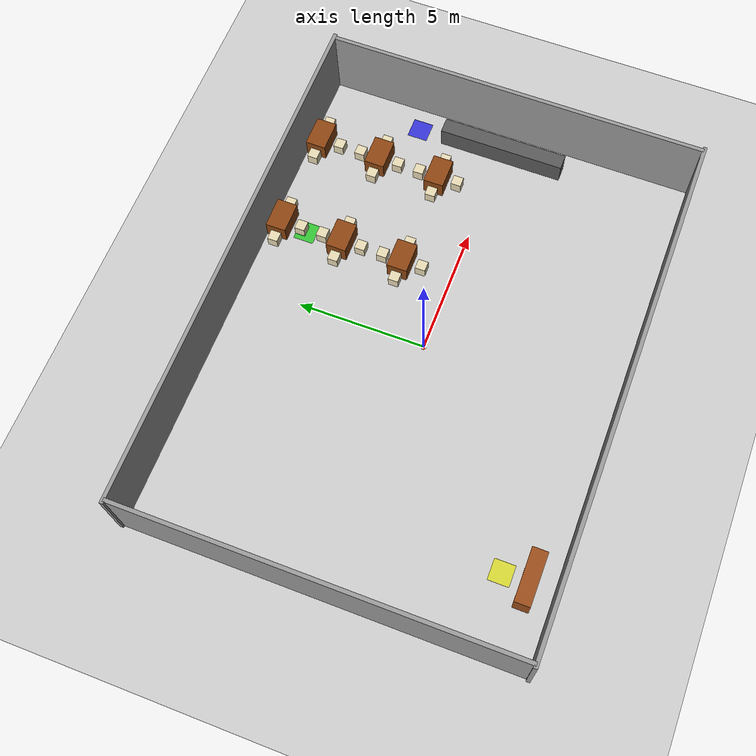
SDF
<?xml version="1.0" ?>
<sdf version="1.6">
  <world name="cafeteria">

    <!-- ── Physics ──────────────────────────────────────────────── -->
    <physics type="ode">
      <real_time_update_rate>1000</real_time_update_rate>
      <max_step_size>0.001</max_step_size>
      <real_time_factor>1</real_time_factor>
    </physics>

    <!-- ── Sky & Atmosphere ─────────────────────────────────────── -->
    <scene>
      <sky>
        <clouds><speed>12</speed></clouds>
      </sky>
      <ambient>0.6 0.6 0.6 1</ambient>
      <background>0.4 0.4 0.4 1</background>
      <shadows>true</shadows>
    </scene>

    <!-- ── Sun (directional light) ──────────────────────────────── -->
    <light name="sun" type="directional">
      <cast_shadows>true</cast_shadows>
      <pose>0 0 10 0 -0 0</pose>
      <diffuse>0.8 0.8 0.8 1</diffuse>
      <specular>0.2 0.2 0.2 1</specular>
      <attenuation>
        <range>1000</range>
        <constant>0.9</constant>
        <linear>0.01</linear>
        <quadratic>0.001</quadratic>
      </attenuation>
      <direction>-0.5 0.1 -0.9</direction>
    </light>

    <!-- ── Table overhead point lights ─────────────────────────── -->
    <light name="table_light_1" type="point">
      <pose>3 3 2.5 0 0 0</pose>
      <diffuse>1.0 0.95 0.8 1</diffuse>
      <specular>0.1 0.1 0.1 1</specular>
      <attenuation><range>8</range><constant>0.5</constant><linear>0.1</linear><quadratic>0.01</quadratic></attenuation>
      <cast_shadows>false</cast_shadows>
    </light>
    <light name="table_light_2" type="point">
      <pose>3 6 2.5 0 0 0</pose>
      <diffuse>1.0 0.95 0.8 1</diffuse>
      <specular>0.1 0.1 0.1 1</specular>
      <attenuation><range>8</range><constant>0.5</constant><linear>0.1</linear><quadratic>0.01</quadratic></attenuation>
      <cast_shadows>false</cast_shadows>
    </light>
    <light name="table_light_3" type="point">
      <pose>7 4.5 2.5 0 0 0</pose>
      <diffuse>1.0 0.95 0.8 1</diffuse>
      <specular>0.1 0.1 0.1 1</specular>
      <attenuation><range>8</range><constant>0.5</constant><linear>0.1</linear><quadratic>0.01</quadratic></attenuation>
      <cast_shadows>false</cast_shadows>
    </light>

    <!-- ── Ground plane ─────────────────────────────────────────── -->
    <model name="ground_plane">
      <static>true</static>
      <link name="link">
        <collision name="collision">
          <geometry><plane><normal>0 0 1</normal><size>50 50</size></plane></geometry>
          <surface><friction><ode><mu>100</mu><mu2>50</mu2></ode></friction></surface>
        </collision>
        <visual name="visual">
          <cast_shadows>false</cast_shadows>
          <geometry><plane><normal>0 0 1</normal><size>50 50</size></plane></geometry>
          <material>
            <script>
              <uri>file://media/materials/scripts/gazebo.material</uri>
              <name>Gazebo/Grey</name>
            </script>
          </material>
        </visual>
      </link>
    </model>

    <!-- ── Cafeteria Walls (20 x 15 m room) ─────────────────────── -->
    <!-- North wall -->
    <model name="wall_north">
      <static>true</static>
      <pose>0 7.5 1.5 0 0 0</pose>
      <link name="link">
        <collision name="col"><geometry><box><size>20.3 0.15 3.0</size></box></geometry></collision>
        <visual name="vis">
          <geometry><box><size>20.3 0.15 3.0</size></box></geometry>
          <material><script><uri>file://media/materials/scripts/gazebo.material</uri><name>Gazebo/Grey</name></script></material>
        </visual>
      </link>
    </model>

    <!-- South wall -->
    <model name="wall_south">
      <static>true</static>
      <pose>0 -7.5 1.5 0 0 0</pose>
      <link name="link">
        <collision name="col"><geometry><box><size>20.3 0.15 3.0</size></box></geometry></collision>
        <visual name="vis">
          <geometry><box><size>20.3 0.15 3.0</size></box></geometry>
          <material><script><uri>file://media/materials/scripts/gazebo.material</uri><name>Gazebo/Grey</name></script></material>
        </visual>
      </link>
    </model>

    <!-- East wall -->
    <model name="wall_east">
      <static>true</static>
      <pose>10 0 1.5 0 0 0</pose>
      <link name="link">
        <collision name="col"><geometry><box><size>0.15 15.0 3.0</size></box></geometry></collision>
        <visual name="vis">
          <geometry><box><size>0.15 15.0 3.0</size></box></geometry>
          <material><script><uri>file://media/materials/scripts/gazebo.material</uri><name>Gazebo/Grey</name></script></material>
        </visual>
      </link>
    </model>

    <!-- West wall -->
    <model name="wall_west">
      <static>true</static>
      <pose>-10 0 1.5 0 0 0</pose>
      <link name="link">
        <collision name="col"><geometry><box><size>0.15 15.0 3.0</size></box></geometry></collision>
        <visual name="vis">
          <geometry><box><size>0.15 15.0 3.0</size></box></geometry>
          <material><script><uri>file://media/materials/scripts/gazebo.material</uri><name>Gazebo/Grey</name></script></material>
        </visual>
      </link>
    </model>

    <!-- Table 1 -->
    <model name="table1">
      <static>true</static>
      <pose>3.0 2.0 0.375 0 0 0</pose>
      <link name="link">
        <collision name="col"><geometry><box><size>1.2 0.8 0.75</size></box></geometry></collision>
        <visual name="vis">
          <geometry><box><size>1.2 0.8 0.75</size></box></geometry>
          <material><ambient>0.55 0.27 0.07 1</ambient><diffuse>0.55 0.27 0.07 1</diffuse></material>
        </visual>
      </link>
    </model>
    <!-- Chairs for Table 1 -->
    <model name="chair1_1"><static>true</static><pose>3.0 1.2 0.225 0 0 0</pose><link name="link"><collision name="col"><geometry><box><size>0.4 0.4 0.45</size></box></geometry></collision><visual name="vis"><geometry><box><size>0.4 0.4 0.45</size></box></geometry><material><ambient>0.9 0.85 0.7 1</ambient><diffuse>0.9 0.85 0.7 1</diffuse></material></visual></link></model>
    <model name="chair1_2"><static>true</static><pose>3.0 2.8 0.225 0 0 0</pose><link name="link"><collision name="col"><geometry><box><size>0.4 0.4 0.45</size></box></geometry></collision><visual name="vis"><geometry><box><size>0.4 0.4 0.45</size></box></geometry><material><ambient>0.9 0.85 0.7 1</ambient><diffuse>0.9 0.85 0.7 1</diffuse></material></visual></link></model>
    <model name="chair1_3"><static>true</static><pose>2.2 2.0 0.225 0 0 0</pose><link name="link"><collision name="col"><geometry><box><size>0.4 0.4 0.45</size></box></geometry></collision><visual name="vis"><geometry><box><size>0.4 0.4 0.45</size></box></geometry><material><ambient>0.9 0.85 0.7 1</ambient><diffuse>0.9 0.85 0.7 1</diffuse></material></visual></link></model>
    <model name="chair1_4"><static>true</static><pose>3.8 2.0 0.225 0 0 0</pose><link name="link"><collision name="col"><geometry><box><size>0.4 0.4 0.45</size></box></geometry></collision><visual name="vis"><geometry><box><size>0.4 0.4 0.45</size></box></geometry><material><ambient>0.9 0.85 0.7 1</ambient><diffuse>0.9 0.85 0.7 1</diffuse></material></visual></link></model>

    <!-- Table 2 -->
    <model name="table2">
      <static>true</static>
      <pose>3.0 4.5 0.375 0 0 0</pose>
      <link name="link">
        <collision name="col"><geometry><box><size>1.2 0.8 0.75</size></box></geometry></collision>
        <visual name="vis">
          <geometry><box><size>1.2 0.8 0.75</size></box></geometry>
          <material><ambient>0.55 0.27 0.07 1</ambient><diffuse>0.55 0.27 0.07 1</diffuse></material>
        </visual>
      </link>
    </model>
    <model name="chair2_1"><static>true</static><pose>3.0 3.7 0.225 0 0 0</pose><link name="link"><collision name="col"><geometry><box><size>0.4 0.4 0.45</size></box></geometry></collision><visual name="vis"><geometry><box><size>0.4 0.4 0.45</size></box></geometry><material><ambient>0.9 0.85 0.7 1</ambient><diffuse>0.9 0.85 0.7 1</diffuse></material></visual></link></model>
    <model name="chair2_2"><static>true</static><pose>3.0 5.3 0.225 0 0 0</pose><link name="link"><collision name="col"><geometry><box><size>0.4 0.4 0.45</size></box></geometry></collision><visual name="vis"><geometry><box><size>0.4 0.4 0.45</size></box></geometry><material><ambient>0.9 0.85 0.7 1</ambient><diffuse>0.9 0.85 0.7 1</diffuse></material></visual></link></model>
    <model name="chair2_3"><static>true</static><pose>2.2 4.5 0.225 0 0 0</pose><link name="link"><collision name="col"><geometry><box><size>0.4 0.4 0.45</size></box></geometry></collision><visual name="vis"><geometry><box><size>0.4 0.4 0.45</size></box></geometry><material><ambient>0.9 0.85 0.7 1</ambient><diffuse>0.9 0.85 0.7 1</diffuse></material></visual></link></model>
    <model name="chair2_4"><static>true</static><pose>3.8 4.5 0.225 0 0 0</pose><link name="link"><collision name="col"><geometry><box><size>0.4 0.4 0.45</size></box></geometry></collision><visual name="vis"><geometry><box><size>0.4 0.4 0.45</size></box></geometry><material><ambient>0.9 0.85 0.7 1</ambient><diffuse>0.9 0.85 0.7 1</diffuse></material></visual></link></model>

    <!-- Table 3 (delivery destination) -->
    <model name="table3">
      <static>true</static>
      <pose>3.0 7.0 0.375 0 0 0</pose>
      <link name="link">
        <collision name="col"><geometry><box><size>1.2 0.8 0.75</size></box></geometry></collision>
        <visual name="vis">
          <geometry><box><size>1.2 0.8 0.75</size></box></geometry>
          <material><ambient>0.55 0.27 0.07 1</ambient><diffuse>0.55 0.27 0.07 1</diffuse></material>
        </visual>
      </link>
    </model>
    <model name="chair3_1"><static>true</static><pose>3.0 6.2 0.225 0 0 0</pose><link name="link"><collision name="col"><geometry><box><size>0.4 0.4 0.45</size></box></geometry></collision><visual name="vis"><geometry><box><size>0.4 0.4 0.45</size></box></geometry><material><ambient>0.9 0.85 0.7 1</ambient><diffuse>0.9 0.85 0.7 1</diffuse></material></visual></link></model>
    <model name="chair3_2"><static>true</static><pose>3.0 7.8 0.225 0 0 0</pose><link name="link"><collision name="col"><geometry><box><size>0.4 0.4 0.45</size></box></geometry></collision><visual name="vis"><geometry><box><size>0.4 0.4 0.45</size></box></geometry><material><ambient>0.9 0.85 0.7 1</ambient><diffuse>0.9 0.85 0.7 1</diffuse></material></visual></link></model>
    <model name="chair3_3"><static>true</static><pose>2.2 7.0 0.225 0 0 0</pose><link name="link"><collision name="col"><geometry><box><size>0.4 0.4 0.45</size></box></geometry></collision><visual name="vis"><geometry><box><size>0.4 0.4 0.45</size></box></geometry><material><ambient>0.9 0.85 0.7 1</ambient><diffuse>0.9 0.85 0.7 1</diffuse></material></visual></link></model>
    <model name="chair3_4"><static>true</static><pose>3.8 7.0 0.225 0 0 0</pose><link name="link"><collision name="col"><geometry><box><size>0.4 0.4 0.45</size></box></geometry></collision><visual name="vis"><geometry><box><size>0.4 0.4 0.45</size></box></geometry><material><ambient>0.9 0.85 0.7 1</ambient><diffuse>0.9 0.85 0.7 1</diffuse></material></visual></link></model>

    <!-- Table 4 -->
    <model name="table4">
      <static>true</static>
      <pose>7.0 2.0 0.375 0 0 0</pose>
      <link name="link">
        <collision name="col"><geometry><box><size>1.2 0.8 0.75</size></box></geometry></collision>
        <visual name="vis">
          <geometry><box><size>1.2 0.8 0.75</size></box></geometry>
          <material><ambient>0.55 0.27 0.07 1</ambient><diffuse>0.55 0.27 0.07 1</diffuse></material>
        </visual>
      </link>
    </model>
    <model name="chair4_1"><static>true</static><pose>7.0 1.2 0.225 0 0 0</pose><link name="link"><collision name="col"><geometry><box><size>0.4 0.4 0.45</size></box></geometry></collision><visual name="vis"><geometry><box><size>0.4 0.4 0.45</size></box></geometry><material><ambient>0.9 0.85 0.7 1</ambient><diffuse>0.9 0.85 0.7 1</diffuse></material></visual></link></model>
    <model name="chair4_2"><static>true</static><pose>7.0 2.8 0.225 0 0 0</pose><link name="link"><collision name="col"><geometry><box><size>0.4 0.4 0.45</size></box></geometry></collision><visual name="vis"><geometry><box><size>0.4 0.4 0.45</size></box></geometry><material><ambient>0.9 0.85 0.7 1</ambient><diffuse>0.9 0.85 0.7 1</diffuse></material></visual></link></model>
    <model name="chair4_3"><static>true</static><pose>6.2 2.0 0.225 0 0 0</pose><link name="link"><collision name="col"><geometry><box><size>0.4 0.4 0.45</size></box></geometry></collision><visual name="vis"><geometry><box><size>0.4 0.4 0.45</size></box></geometry><material><ambient>0.9 0.85 0.7 1</ambient><diffuse>0.9 0.85 0.7 1</diffuse></material></visual></link></model>
    <model name="chair4_4"><static>true</static><pose>7.8 2.0 0.225 0 0 0</pose><link name="link"><collision name="col"><geometry><box><size>0.4 0.4 0.45</size></box></geometry></collision><visual name="vis"><geometry><box><size>0.4 0.4 0.45</size></box></geometry><material><ambient>0.9 0.85 0.7 1</ambient><diffuse>0.9 0.85 0.7 1</diffuse></material></visual></link></model>

    <!-- Table 5 -->
    <model name="table5">
      <static>true</static>
      <pose>7.0 4.5 0.375 0 0 0</pose>
      <link name="link">
        <collision name="col"><geometry><box><size>1.2 0.8 0.75</size></box></geometry></collision>
        <visual name="vis">
          <geometry><box><size>1.2 0.8 0.75</size></box></geometry>
          <material><ambient>0.55 0.27 0.07 1</ambient><diffuse>0.55 0.27 0.07 1</diffuse></material>
        </visual>
      </link>
    </model>
    <model name="chair5_1"><static>true</static><pose>7.0 3.7 0.225 0 0 0</pose><link name="link"><collision name="col"><geometry><box><size>0.4 0.4 0.45</size></box></geometry></collision><visual name="vis"><geometry><box><size>0.4 0.4 0.45</size></box></geometry><material><ambient>0.9 0.85 0.7 1</ambient><diffuse>0.9 0.85 0.7 1</diffuse></material></visual></link></model>
    <model name="chair5_2"><static>true</static><pose>7.0 5.3 0.225 0 0 0</pose><link name="link"><collision name="col"><geometry><box><size>0.4 0.4 0.45</size></box></geometry></collision><visual name="vis"><geometry><box><size>0.4 0.4 0.45</size></box></geometry><material><ambient>0.9 0.85 0.7 1</ambient><diffuse>0.9 0.85 0.7 1</diffuse></material></visual></link></model>
    <model name="chair5_3"><static>true</static><pose>6.2 4.5 0.225 0 0 0</pose><link name="link"><collision name="col"><geometry><box><size>0.4 0.4 0.45</size></box></geometry></collision><visual name="vis"><geometry><box><size>0.4 0.4 0.45</size></box></geometry><material><ambient>0.9 0.85 0.7 1</ambient><diffuse>0.9 0.85 0.7 1</diffuse></material></visual></link></model>
    <model name="chair5_4"><static>true</static><pose>7.8 4.5 0.225 0 0 0</pose><link name="link"><collision name="col"><geometry><box><size>0.4 0.4 0.45</size></box></geometry></collision><visual name="vis"><geometry><box><size>0.4 0.4 0.45</size></box></geometry><material><ambient>0.9 0.85 0.7 1</ambient><diffuse>0.9 0.85 0.7 1</diffuse></material></visual></link></model>

    <!-- Table 6 -->
    <model name="table6">
      <static>true</static>
      <pose>7.0 7.0 0.375 0 0 0</pose>
      <link name="link">
        <collision name="col"><geometry><box><size>1.2 0.8 0.75</size></box></geometry></collision>
        <visual name="vis">
          <geometry><box><size>1.2 0.8 0.75</size></box></geometry>
          <material><ambient>0.55 0.27 0.07 1</ambient><diffuse>0.55 0.27 0.07 1</diffuse></material>
        </visual>
      </link>
    </model>
    <model name="chair6_1"><static>true</static><pose>7.0 6.2 0.225 0 0 0</pose><link name="link"><collision name="col"><geometry><box><size>0.4 0.4 0.45</size></box></geometry></collision><visual name="vis"><geometry><box><size>0.4 0.4 0.45</size></box></geometry><material><ambient>0.9 0.85 0.7 1</ambient><diffuse>0.9 0.85 0.7 1</diffuse></material></visual></link></model>
    <model name="chair6_2"><static>true</static><pose>7.0 7.8 0.225 0 0 0</pose><link name="link"><collision name="col"><geometry><box><size>0.4 0.4 0.45</size></box></geometry></collision><visual name="vis"><geometry><box><size>0.4 0.4 0.45</size></box></geometry><material><ambient>0.9 0.85 0.7 1</ambient><diffuse>0.9 0.85 0.7 1</diffuse></material></visual></link></model>
    <model name="chair6_3"><static>true</static><pose>6.2 7.0 0.225 0 0 0</pose><link name="link"><collision name="col"><geometry><box><size>0.4 0.4 0.45</size></box></geometry></collision><visual name="vis"><geometry><box><size>0.4 0.4 0.45</size></box></geometry><material><ambient>0.9 0.85 0.7 1</ambient><diffuse>0.9 0.85 0.7 1</diffuse></material></visual></link></model>
    <model name="chair6_4"><static>true</static><pose>7.8 7.0 0.225 0 0 0</pose><link name="link"><collision name="col"><geometry><box><size>0.4 0.4 0.45</size></box></geometry></collision><visual name="vis"><geometry><box><size>0.4 0.4 0.45</size></box></geometry><material><ambient>0.9 0.85 0.7 1</ambient><diffuse>0.9 0.85 0.7 1</diffuse></material></visual></link></model>

    <!-- ── Kitchen Counter ─────────────────────────────────────── -->
    <model name="kitchen_counter">
      <static>true</static>
      <pose>9.0 0.0 0.45 0 0 0</pose>
      <link name="link">
        <collision name="col"><geometry><box><size>0.6 5.0 0.9</size></box></geometry></collision>
        <visual name="vis">
          <geometry><box><size>0.6 5.0 0.9</size></box></geometry>
          <material><ambient>0.35 0.35 0.35 1</ambient><diffuse>0.35 0.35 0.35 1</diffuse></material>
        </visual>
      </link>
    </model>

    <!-- ── Front Desk / Reception ──────────────────────────────── -->
    <model name="front_desk">
      <static>true</static>
      <pose>-7.0 -6.5 0.5 0 0 0</pose>
      <link name="link">
        <collision name="col"><geometry><box><size>2.0 0.6 1.0</size></box></geometry></collision>
        <visual name="vis">
          <geometry><box><size>2.0 0.6 1.0</size></box></geometry>
          <material><ambient>0.6 0.3 0.1 1</ambient><diffuse>0.6 0.3 0.1 1</diffuse></material>
        </visual>
      </link>
    </model>

    <!-- ── Delivery Zone Markers (flat coloured tiles) ─────────── -->
    <!-- Table3 zone: GREEN tile -->
    <model name="zone_table3">
      <static>true</static>
      <pose>3.0 6.0 0.005 0 0 0</pose>
      <link name="link">
        <collision name="col"><geometry><box><size>0.8 0.8 0.01</size></box></geometry></collision>
        <visual name="vis">
          <geometry><box><size>0.8 0.8 0.01</size></box></geometry>
          <material><ambient>0.0 0.8 0.0 0.7</ambient><diffuse>0.0 0.8 0.0 0.7</diffuse></material>
        </visual>
      </link>
    </model>

    <!-- Room204 zone: BLUE tile -->
    <model name="zone_room204">
      <static>true</static>
      <pose>9.0 3.5 0.005 0 0 0</pose>
      <link name="link">
        <collision name="col"><geometry><box><size>0.8 0.8 0.01</size></box></geometry></collision>
        <visual name="vis">
          <geometry><box><size>0.8 0.8 0.01</size></box></geometry>
          <material><ambient>0.0 0.0 0.9 0.7</ambient><diffuse>0.0 0.0 0.9 0.7</diffuse></material>
        </visual>
      </link>
    </model>

    <!-- FrontDesk zone: YELLOW tile -->
    <model name="zone_frontdesk">
      <static>true</static>
      <pose>-7.0 -5.5 0.005 0 0 0</pose>
      <link name="link">
        <collision name="col"><geometry><box><size>0.8 0.8 0.01</size></box></geometry></collision>
        <visual name="vis">
          <geometry><box><size>0.8 0.8 0.01</size></box></geometry>
          <material><ambient>0.9 0.9 0.0 0.7</ambient><diffuse>0.9 0.9 0.0 0.7</diffuse></material>
        </visual>
      </link>
    </model>

    <!-- ── Robot start marker (red cylinder) ─────────────────────── -->
    <model name="start_marker">
      <static>true</static>
      <pose>0 0 0.005 0 0 0</pose>
      <link name="link">
        <collision name="col"><geometry><cylinder><radius>0.1</radius><length>0.01</length></cylinder></geometry></collision>
        <visual name="vis">
          <geometry><cylinder><radius>0.1</radius><length>0.01</length></cylinder></geometry>
          <material><ambient>0.9 0.0 0.0 0.8</ambient><diffuse>0.9 0.0 0.0 0.8</diffuse></material>
        </visual>
      </link>
    </model>

  </world>
</sdf>
